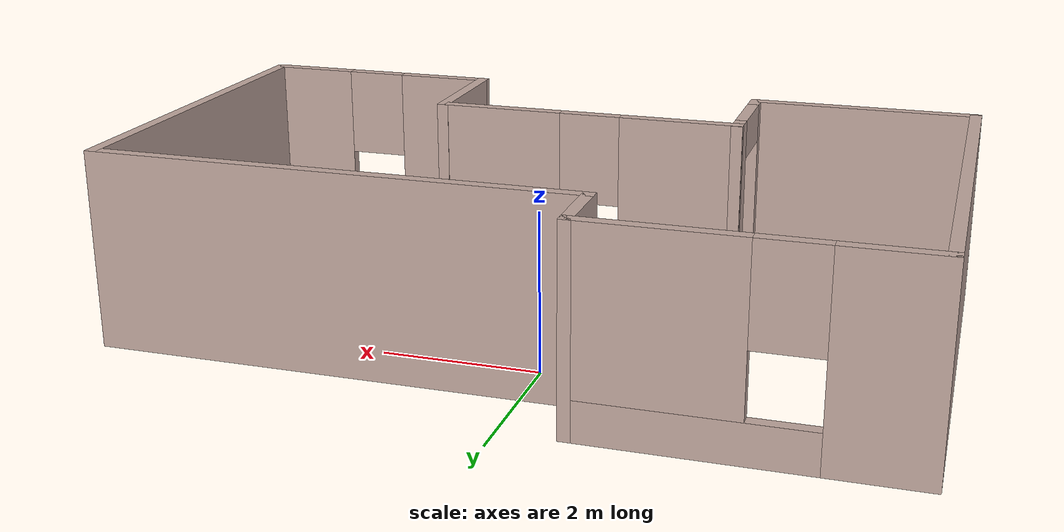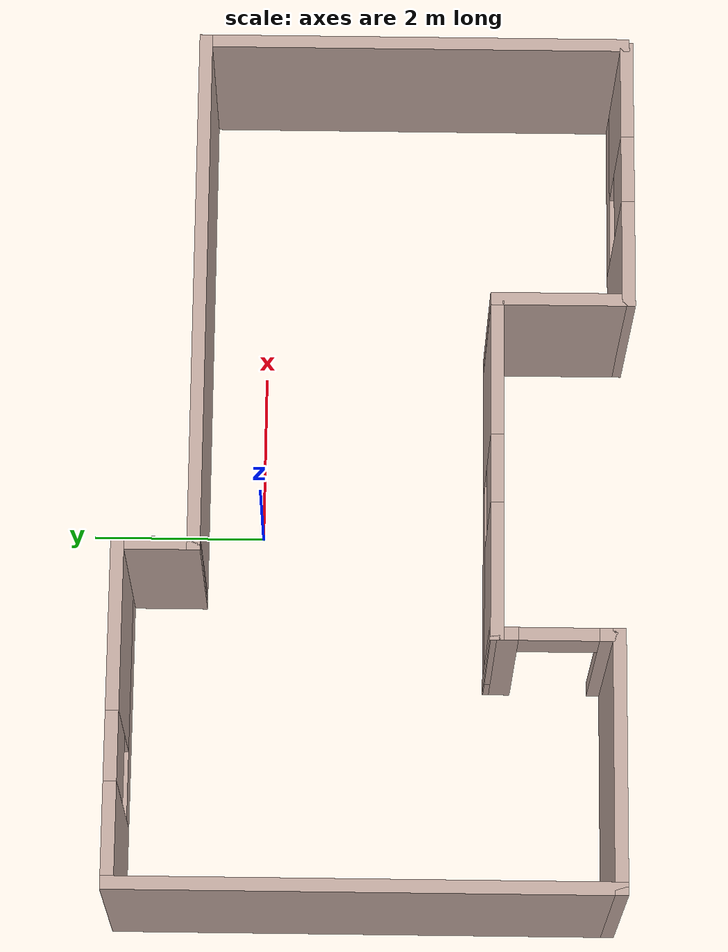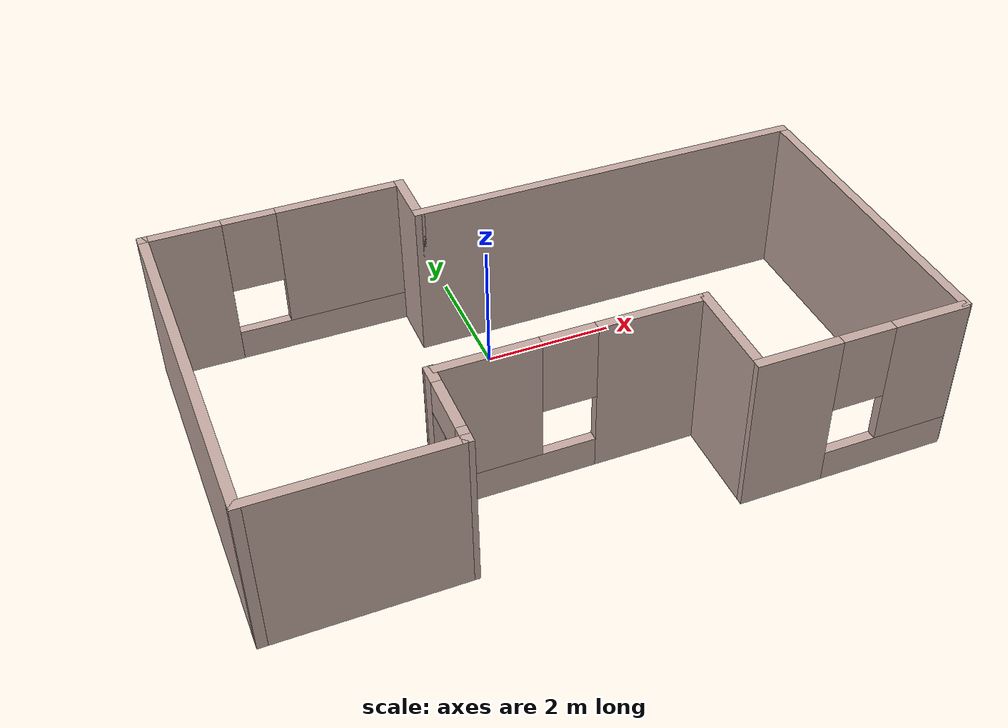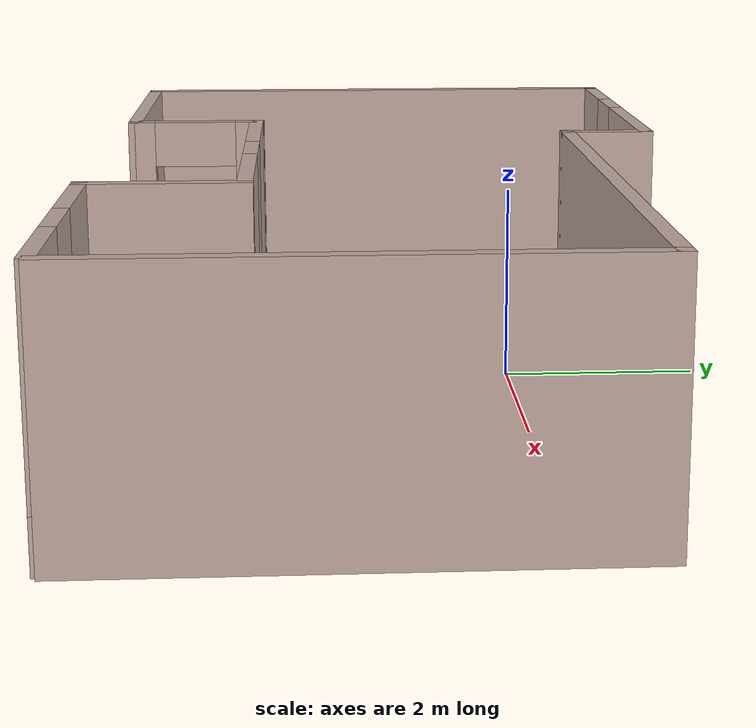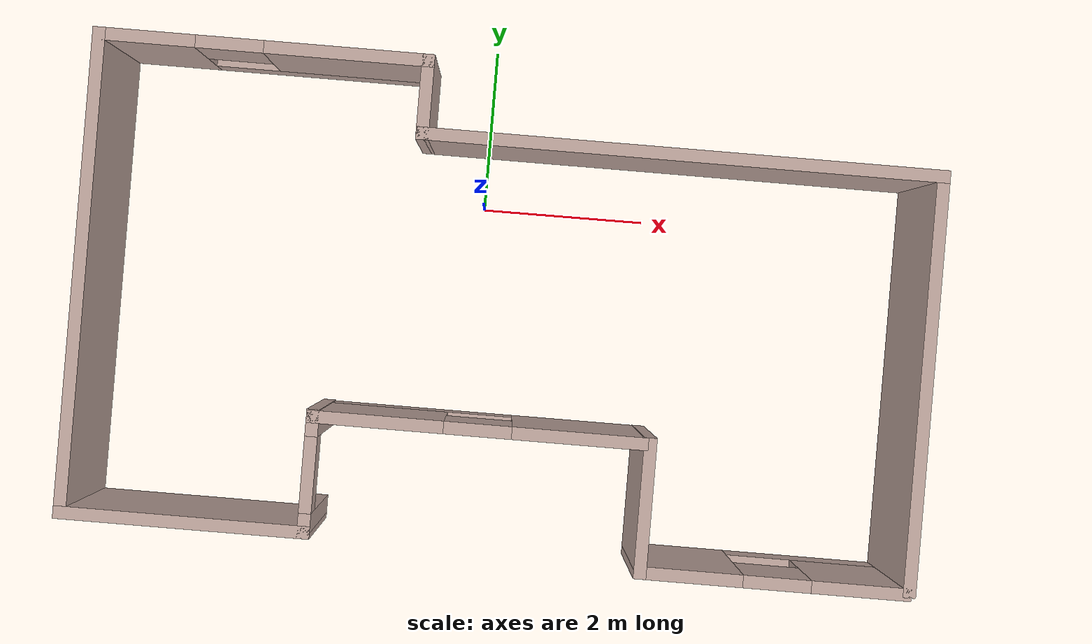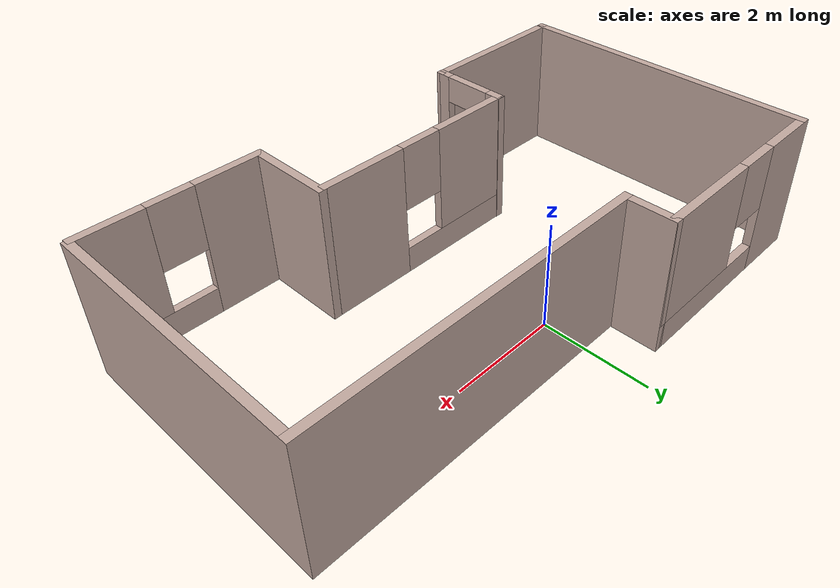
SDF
<?xml version='1.0'?>
<sdf version='1.6'>
  <model name='mybuilding'>
    <pose frame=''>0.345 -1.29066 0 0 -0 0</pose>
    <link name='Wall_1'>
      <collision name='Wall_1_Collision'>
        <geometry>
          <box>
            <size>3 0.15 2.5</size>
          </box>
        </geometry>
        <pose frame=''>0 0 1.25 0 -0 0</pose>
      </collision>
      <visual name='Wall_1_Visual'>
        <pose frame=''>0 0 1.25 0 -0 0</pose>
        <geometry>
          <box>
            <size>3 0.15 2.5</size>
          </box>
        </geometry>
        <material>
          <script>
            <uri>file://media/materials/scripts/gazebo.material</uri>
            <name>Gazebo/Grey</name>
          </script>
          <ambient>0.760784 0.662745 0.627451 1</ambient>
        </material>
        <meta>
          <layer>0</layer>
        </meta>
      </visual>
      <pose frame=''>-3.55 -2.72934 0 0 -0 0</pose>
    </link>
    <link name='Wall_15'>
      <collision name='Wall_15_Collision'>
        <geometry>
          <box>
            <size>5.75 0.15 2.5</size>
          </box>
        </geometry>
        <pose frame=''>0 0 1.25 0 -0 0</pose>
      </collision>
      <visual name='Wall_15_Visual'>
        <pose frame=''>0 0 1.25 0 -0 0</pose>
        <geometry>
          <box>
            <size>5.75 0.15 2.5</size>
          </box>
        </geometry>
        <material>
          <script>
            <uri>file://media/materials/scripts/gazebo.material</uri>
            <name>Gazebo/Grey</name>
          </script>
          <ambient>0.760784 0.662745 0.627451 1</ambient>
        </material>
        <meta>
          <layer>0</layer>
        </meta>
      </visual>
      <pose frame=''>-4.975 0.070656 0 0 -0 1.5708</pose>
    </link>
    <link name='Wall_16'>
      <pose frame=''>-3.05 2.87066 0 0 -0 0</pose>
      <visual name='Wall_16_Visual_0'>
        <pose frame=''>-1.3996 0 1.25 0 -0 0</pose>
        <geometry>
          <box>
            <size>1.2008 0.15 2.5</size>
          </box>
        </geometry>
        <material>
          <script>
            <uri>file://media/materials/scripts/gazebo.material</uri>
            <name>Gazebo/Grey</name>
          </script>
          <ambient>0.760784 0.662745 0.627451 1</ambient>
        </material>
        <meta>
          <layer>0</layer>
        </meta>
      </visual>
      <collision name='Wall_16_Collision_0'>
        <geometry>
          <box>
            <size>1.2008 0.15 2.5</size>
          </box>
        </geometry>
        <pose frame=''>-1.3996 0 1.25 0 -0 0</pose>
      </collision>
      <visual name='Wall_16_Visual_1'>
        <pose frame=''>0.600399 0 0.25 0 -0 0</pose>
        <geometry>
          <box>
            <size>2.7992 0.15 0.5</size>
          </box>
        </geometry>
        <material>
          <script>
            <uri>file://media/materials/scripts/gazebo.material</uri>
            <name>Gazebo/Grey</name>
          </script>
          <ambient>0.760784 0.662745 0.627451 1</ambient>
        </material>
        <meta>
          <layer>0</layer>
        </meta>
      </visual>
      <collision name='Wall_16_Collision_1'>
        <geometry>
          <box>
            <size>2.7992 0.15 0.5</size>
          </box>
        </geometry>
        <pose frame=''>0.600399 0 0.25 0 -0 0</pose>
      </collision>
      <visual name='Wall_16_Visual_2'>
        <pose frame=''>1.0004 0 1.5 0 -0 0</pose>
        <geometry>
          <box>
            <size>1.9992 0.15 2</size>
          </box>
        </geometry>
        <material>
          <script>
            <uri>file://media/materials/scripts/gazebo.material</uri>
            <name>Gazebo/Grey</name>
          </script>
          <ambient>0.760784 0.662745 0.627451 1</ambient>
        </material>
        <meta>
          <layer>0</layer>
        </meta>
      </visual>
      <collision name='Wall_16_Collision_2'>
        <geometry>
          <box>
            <size>1.9992 0.15 2</size>
          </box>
        </geometry>
        <pose frame=''>1.0004 0 1.5 0 -0 0</pose>
      </collision>
      <visual name='Wall_16_Visual_3'>
        <pose frame=''>-0.399203 0 1.9 0 -0 0</pose>
        <geometry>
          <box>
            <size>0.8 0.15 1.2</size>
          </box>
        </geometry>
        <material>
          <script>
            <uri>file://media/materials/scripts/gazebo.material</uri>
            <name>Gazebo/Grey</name>
          </script>
          <ambient>0.760784 0.662745 0.627451 1</ambient>
        </material>
        <meta>
          <layer>0</layer>
        </meta>
      </visual>
      <collision name='Wall_16_Collision_3'>
        <geometry>
          <box>
            <size>0.8 0.15 1.2</size>
          </box>
        </geometry>
        <pose frame=''>-0.399203 0 1.9 0 -0 0</pose>
      </collision>
    </link>
    <link name='Wall_17'>
      <collision name='Wall_17_Collision'>
        <geometry>
          <box>
            <size>1 0.15 2.5</size>
          </box>
        </geometry>
        <pose frame=''>0 0 1.25 0 -0 0</pose>
      </collision>
      <visual name='Wall_17_Visual'>
        <pose frame=''>0 0 1.25 0 -0 0</pose>
        <geometry>
          <box>
            <size>1 0.15 2.5</size>
          </box>
        </geometry>
        <material>
          <script>
            <uri>file://media/materials/scripts/gazebo.material</uri>
            <name>Gazebo/Grey</name>
          </script>
          <ambient>0.760784 0.662745 0.627451 1</ambient>
        </material>
        <meta>
          <layer>0</layer>
        </meta>
      </visual>
      <pose frame=''>-1.125 2.44566 0 0 0 -1.5708</pose>
    </link>
    <link name='Wall_18'>
      <collision name='Wall_18_Collision'>
        <geometry>
          <box>
            <size>6.25 0.15 2.5</size>
          </box>
        </geometry>
        <pose frame=''>0 0 1.25 0 -0 0</pose>
      </collision>
      <visual name='Wall_18_Visual'>
        <pose frame=''>0 0 1.25 0 -0 0</pose>
        <geometry>
          <box>
            <size>6.25 0.15 2.5</size>
          </box>
        </geometry>
        <material>
          <script>
            <uri>file://media/materials/scripts/gazebo.material</uri>
            <name>Gazebo/Grey</name>
          </script>
          <ambient>0.760784 0.662745 0.627451 1</ambient>
        </material>
        <meta>
          <layer>0</layer>
        </meta>
      </visual>
      <pose frame=''>1.925 2.02066 0 0 -0 0</pose>
    </link>
    <link name='Wall_19'>
      <collision name='Wall_19_Collision'>
        <geometry>
          <box>
            <size>5 0.15 2.5</size>
          </box>
        </geometry>
        <pose frame=''>0 0 1.25 0 -0 0</pose>
      </collision>
      <visual name='Wall_19_Visual'>
        <pose frame=''>0 0 1.25 0 -0 0</pose>
        <geometry>
          <box>
            <size>5 0.15 2.5</size>
          </box>
        </geometry>
        <material>
          <script>
            <uri>file://media/materials/scripts/gazebo.material</uri>
            <name>Gazebo/Grey</name>
          </script>
          <ambient>0.760784 0.662745 0.627451 1</ambient>
        </material>
        <meta>
          <layer>0</layer>
        </meta>
      </visual>
      <pose frame=''>4.975 -0.404344 0 0 0 -1.5708</pose>
    </link>
    <link name='Wall_2'>
      <pose frame=''>-2.1245 -2.04636 0 0 -0 1.57007</pose>
      <visual name='Wall_2_Visual_0'>
        <pose frame=''>-0.609358 0 1.25 0 -0 0</pose>
        <geometry>
          <box>
            <size>0.297255 0.15 2.5</size>
          </box>
        </geometry>
        <material>
          <script>
            <uri>file://media/materials/scripts/gazebo.material</uri>
            <name>Gazebo/Grey</name>
          </script>
          <ambient>0.760784 0.662745 0.627451 1</ambient>
        </material>
        <meta>
          <layer>0</layer>
        </meta>
      </visual>
      <collision name='Wall_2_Collision_0'>
        <geometry>
          <box>
            <size>0.297255 0.15 2.5</size>
          </box>
        </geometry>
        <pose frame=''>-0.609358 0 1.25 0 -0 0</pose>
      </collision>
      <visual name='Wall_2_Visual_1'>
        <pose frame=''>0.598627 0 1.25 0 -0 0</pose>
        <geometry>
          <box>
            <size>0.318717 0.15 2.5</size>
          </box>
        </geometry>
        <material>
          <script>
            <uri>file://media/materials/scripts/gazebo.material</uri>
            <name>Gazebo/Grey</name>
          </script>
          <ambient>0.760784 0.662745 0.627451 1</ambient>
        </material>
        <meta>
          <layer>0</layer>
        </meta>
      </visual>
      <collision name='Wall_2_Collision_1'>
        <geometry>
          <box>
            <size>0.318717 0.15 2.5</size>
          </box>
        </geometry>
        <pose frame=''>0.598627 0 1.25 0 -0 0</pose>
      </collision>
      <visual name='Wall_2_Visual_2'>
        <pose frame=''>-0.010731 0 2.25 0 -0 0</pose>
        <geometry>
          <box>
            <size>0.9 0.15 0.5</size>
          </box>
        </geometry>
        <material>
          <script>
            <uri>file://media/materials/scripts/gazebo.material</uri>
            <name>Gazebo/Grey</name>
          </script>
          <ambient>0.760784 0.662745 0.627451 1</ambient>
        </material>
        <meta>
          <layer>0</layer>
        </meta>
      </visual>
      <collision name='Wall_2_Collision_2'>
        <geometry>
          <box>
            <size>0.9 0.15 0.5</size>
          </box>
        </geometry>
        <pose frame=''>-0.010731 0 2.25 0 -0 0</pose>
      </collision>
    </link>
    <link name='Wall_21'>
      <pose frame=''>-0.199006 -1.37332 0 0 -0 3.14159</pose>
      <visual name='Wall_21_Visual_0'>
        <pose frame=''>-1.20098 0 1.25 0 -0 0</pose>
        <geometry>
          <box>
            <size>1.59804 0.15 2.5</size>
          </box>
        </geometry>
        <material>
          <script>
            <uri>file://media/materials/scripts/gazebo.material</uri>
            <name>Gazebo/Grey</name>
          </script>
          <ambient>0.760784 0.662745 0.627451 1</ambient>
        </material>
        <meta>
          <layer>0</layer>
        </meta>
      </visual>
      <collision name='Wall_21_Collision_0'>
        <geometry>
          <box>
            <size>1.59804 0.15 2.5</size>
          </box>
        </geometry>
        <pose frame=''>-1.20098 0 1.25 0 -0 0</pose>
      </collision>
      <visual name='Wall_21_Visual_1'>
        <pose frame=''>0.799018 0 0.25 0 -0 0</pose>
        <geometry>
          <box>
            <size>2.40196 0.15 0.5</size>
          </box>
        </geometry>
        <material>
          <script>
            <uri>file://media/materials/scripts/gazebo.material</uri>
            <name>Gazebo/Grey</name>
          </script>
          <ambient>0.760784 0.662745 0.627451 1</ambient>
        </material>
        <meta>
          <layer>0</layer>
        </meta>
      </visual>
      <collision name='Wall_21_Collision_1'>
        <geometry>
          <box>
            <size>2.40196 0.15 0.5</size>
          </box>
        </geometry>
        <pose frame=''>0.799018 0 0.25 0 -0 0</pose>
      </collision>
      <visual name='Wall_21_Visual_2'>
        <pose frame=''>1.19902 0 1.5 0 -0 0</pose>
        <geometry>
          <box>
            <size>1.60196 0.15 2</size>
          </box>
        </geometry>
        <material>
          <script>
            <uri>file://media/materials/scripts/gazebo.material</uri>
            <name>Gazebo/Grey</name>
          </script>
          <ambient>0.760784 0.662745 0.627451 1</ambient>
        </material>
        <meta>
          <layer>0</layer>
        </meta>
      </visual>
      <collision name='Wall_21_Collision_2'>
        <geometry>
          <box>
            <size>1.60196 0.15 2</size>
          </box>
        </geometry>
        <pose frame=''>1.19902 0 1.5 0 -0 0</pose>
      </collision>
      <visual name='Wall_21_Visual_3'>
        <pose frame=''>-0.001963 0 1.9 0 -0 0</pose>
        <geometry>
          <box>
            <size>0.8 0.15 1.2</size>
          </box>
        </geometry>
        <material>
          <script>
            <uri>file://media/materials/scripts/gazebo.material</uri>
            <name>Gazebo/Grey</name>
          </script>
          <ambient>0.760784 0.662745 0.627451 1</ambient>
        </material>
        <meta>
          <layer>0</layer>
        </meta>
      </visual>
      <collision name='Wall_21_Collision_3'>
        <geometry>
          <box>
            <size>0.8 0.15 1.2</size>
          </box>
        </geometry>
        <pose frame=''>-0.001963 0 1.9 0 -0 0</pose>
      </collision>
    </link>
    <link name='Wall_23'>
      <collision name='Wall_23_Collision'>
        <geometry>
          <box>
            <size>1.65 0.15 2.5</size>
          </box>
        </geometry>
        <pose frame=''>0 0 1.25 0 -0 0</pose>
      </collision>
      <visual name='Wall_23_Visual'>
        <pose frame=''>0 0 1.25 0 -0 0</pose>
        <geometry>
          <box>
            <size>1.65 0.15 2.5</size>
          </box>
        </geometry>
        <material>
          <script>
            <uri>file://media/materials/scripts/gazebo.material</uri>
            <name>Gazebo/Grey</name>
          </script>
          <ambient>0.760784 0.662745 0.627451 1</ambient>
        </material>
        <meta>
          <layer>0</layer>
        </meta>
      </visual>
      <pose frame=''>1.825 -2.12034 0 0 -0 1.5708</pose>
    </link>
    <link name='Wall_7'>
      <pose frame=''>3.375 -2.8705 0 0 0 -9.8e-05</pose>
      <visual name='Wall_7_Visual_0'>
        <pose frame=''>-0.984775 0 1.25 0 -0 0</pose>
        <geometry>
          <box>
            <size>1.28045 0.15 2.5</size>
          </box>
        </geometry>
        <material>
          <script>
            <uri>file://media/materials/scripts/gazebo.material</uri>
            <name>Gazebo/Grey</name>
          </script>
          <ambient>0.760784 0.662745 0.627451 1</ambient>
        </material>
        <meta>
          <layer>0</layer>
        </meta>
      </visual>
      <collision name='Wall_7_Collision_0'>
        <geometry>
          <box>
            <size>1.28045 0.15 2.5</size>
          </box>
        </geometry>
        <pose frame=''>-0.984775 0 1.25 0 -0 0</pose>
      </collision>
      <visual name='Wall_7_Visual_1'>
        <pose frame=''>0.640225 0 0.25 0 -0 0</pose>
        <geometry>
          <box>
            <size>1.96955 0.15 0.5</size>
          </box>
        </geometry>
        <material>
          <script>
            <uri>file://media/materials/scripts/gazebo.material</uri>
            <name>Gazebo/Grey</name>
          </script>
          <ambient>0.760784 0.662745 0.627451 1</ambient>
        </material>
        <meta>
          <layer>0</layer>
        </meta>
      </visual>
      <collision name='Wall_7_Collision_1'>
        <geometry>
          <box>
            <size>1.96955 0.15 0.5</size>
          </box>
        </geometry>
        <pose frame=''>0.640225 0 0.25 0 -0 0</pose>
      </collision>
      <visual name='Wall_7_Visual_2'>
        <pose frame=''>1.04022 0 1.5 0 -0 0</pose>
        <geometry>
          <box>
            <size>1.16955 0.15 2</size>
          </box>
        </geometry>
        <material>
          <script>
            <uri>file://media/materials/scripts/gazebo.material</uri>
            <name>Gazebo/Grey</name>
          </script>
          <ambient>0.760784 0.662745 0.627451 1</ambient>
        </material>
        <meta>
          <layer>0</layer>
        </meta>
      </visual>
      <collision name='Wall_7_Collision_2'>
        <geometry>
          <box>
            <size>1.16955 0.15 2</size>
          </box>
        </geometry>
        <pose frame=''>1.04022 0 1.5 0 -0 0</pose>
      </collision>
      <visual name='Wall_7_Visual_3'>
        <pose frame=''>0.055451 0 1.9 0 -0 0</pose>
        <geometry>
          <box>
            <size>0.8 0.15 1.2</size>
          </box>
        </geometry>
        <material>
          <script>
            <uri>file://media/materials/scripts/gazebo.material</uri>
            <name>Gazebo/Grey</name>
          </script>
          <ambient>0.760784 0.662745 0.627451 1</ambient>
        </material>
        <meta>
          <layer>0</layer>
        </meta>
      </visual>
      <collision name='Wall_7_Collision_3'>
        <geometry>
          <box>
            <size>0.8 0.15 1.2</size>
          </box>
        </geometry>
        <pose frame=''>0.055451 0 1.9 0 -0 0</pose>
      </collision>
    </link>
    <static>1</static>
  </model>
</sdf>
